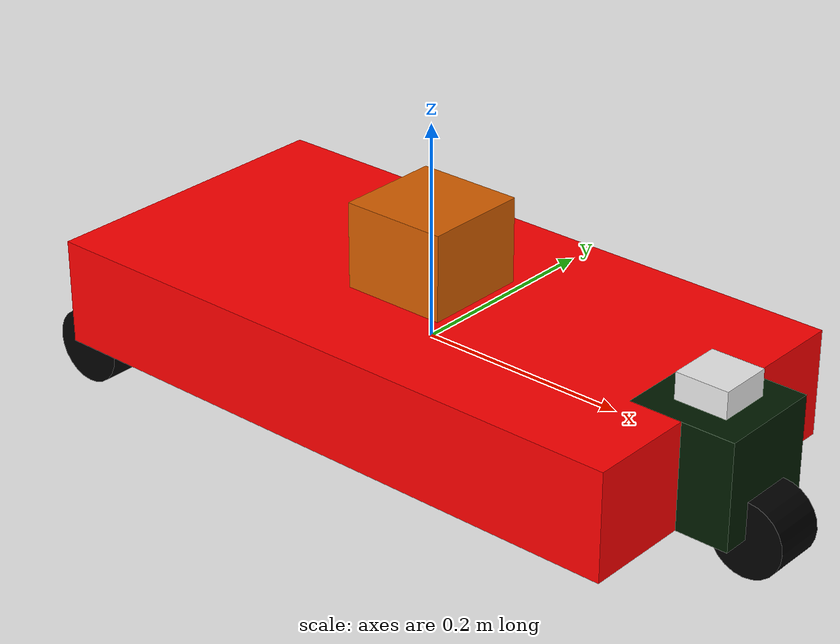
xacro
<?xml version="1.0"?>
<robot name="meccanum">
    <link name="base_link">
        <visual>
            <geometry>
                <box size="0.6 0.3 0.1"/>
            </geometry>
            <material name="red">
                <color rgba="1 0.0 0.0 1"/>
            </material>
        </visual>
        <collision>
            <geometry>
                <box size="0.6 0.3 0.1"/>
            </geometry>
        </collision>
        <inertial>
            <mass value="1.0"/>
            <inertia ixx="0.015" ixy="0" ixz="0" iyy="0.0375" iyz="0.0" izz="0.0375"/>
        </inertial>

    </link>

    <link name="front_caster_of_wheel">
        <visual>
            <geometry>
                <box size="0.1 0.1 0.1"/>
            </geometry>
            <material name="green">
                <color rgba="0.0 0.1 0.0 1"/>
            </material>
        </visual>
        <collision>
            <geometry>
                <box size="0.1 0.1 0.1"/>
            </geometry>
        </collision>
        <inertial>
            <mass value="0.1"/>
            <inertia ixx="0.00083" ixy="0" ixz="0" iyy="0.00083" iyz="0.0" izz="0.000167"/>
        </inertial>
    </link>
    <joint name="front_caster_of_wheel_joint" type="continuous">
       <axis xyz="0.0 0.0 1"/>
       <parent link="base_link"/>
       <child link="front_caster_of_wheel"/>
       <origin xyz="0.3 0.0 0.0" rpy="0.0 0.0 0.0"/>
    </joint>

    <link name="front_wheel">
        <visual>
            <geometry>
                <cylinder radius="0.035" length="0.05"/>
            </geometry>
            <material name="black">

            </material>

        </visual>
        <collision>
            <geometry>
                <cylinder radius="0.035" length="0.05"/>
            </geometry>
        </collision>
        <inertial>
            <mass value="0.1"/>
            <inertia ixx="5.1458e-5" ixy="0" ixz="0" iyy="5.1458e-5" iyz="0.0" izz="6.125e-5"/>
        </inertial>
    </link>

    <joint name="front_wheel_joint" type="continuous">
        <axis xyz="0.0 0.0 1"/>
        <parent link="front_caster_of_wheel"/>
        <child link="front_wheel"/>
        <origin xyz="0.05 0.0 -0.05" rpy="-1.5708 0.0 0.0"/>

    </joint>

<link name="right_wheel">
        <visual>
            <geometry>
                <cylinder radius="0.035" length="0.05"/>
            </geometry>
            <material name="black">
                <color rgba="0.0 0.0 0.0 1"/>
            </material>

        </visual>
        <collision>
            <geometry>
                <cylinder radius="0.035" length="0.05"/>
            </geometry>
        </collision>
        <inertial>
            <mass value="0.1"/>
            <inertia ixx="5.1458e-5" ixy="0" ixz="0" iyy="5.1458e-5" iyz="0.0" izz="6.125e-5"/>        </inertial>
    </link>

    <joint name="right_wheel_joint" type="continuous">
        <axis xyz="0.0 0.0 1"/>
        <parent link="base_link"/>
        <child link="right_wheel"/>
        <origin xyz="-0.2825 -0.125 -0.05" rpy="-1.5708 0.0 0.0"/>

    </joint>
    <link name="left_wheel">
        <visual>
            <geometry>
                <cylinder radius="0.035" length="0.05"/>
            </geometry>
            <material name="black">
                <color rgba="0.0 0.0 0.0 1"/>
            </material>

        </visual>
        <collision>
            <geometry>
                <cylinder radius="0.035" length="0.05"/>
            </geometry>
        </collision>
        <inertial>
            <mass value="0.1"/>
            <inertia ixx="5.1458e-5" ixy="0" ixz="0" iyy="5.1458e-5" iyz="0.0" izz="6.125e-5"/>        </inertial>
    </link>

    <joint name="left_wheel_joint" type="continuous">
        <axis xyz="0.0 0.0 1"/>
        <parent link="base_link"/>
        <child link="left_wheel"/>
        <origin xyz="-0.2825 0.125 -0.05" rpy="-1.5708 0.0 0.0"/>

    </joint>

    <link name="laser_scanner">
        <visual>
            <geometry>
                <box size="0.1 0.1 0.1"/>
            </geometry>
        </visual>

        <collision>
            <geometry>
                <box size="0.1 0.1 0.1"/>
            </geometry>
        </collision>

        <inertial>
            <mass value="1e-5"/>
            <inertia ixx="1e-6" ixy="0" ixz="0.0" iyy="1e-6" iyz="0.0" izz="1e-6"/>
        </inertial>
    </link>

    <joint name="laser_scanner_joint" type="fixed">
        <axis xyz="0.0 1 0.0"/>
        <parent link="base_link"/>
        <child link="laser_scanner"/>
        <origin xyz="0.0 0.0 0.08" rpy="0.0 0.0 0.0"/>
    </joint>

  <joint name="camera_joint" type="fixed">
    <axis xyz="0 1 0" />
    <origin xyz="0.3 0.0 0.05" rpy="0 0 0"/>
    <parent link="base_link"/>
    <child link="camera_link"/>
  </joint>

  <!-- Camera -->
  <link name="camera_link">
    <collision>
      <origin xyz="0 0 0" rpy="0 0 0"/>
      <geometry>
    <box size="0.05 0.05 0.05"/>
      </geometry>
    </collision>

    <visual>
      <origin xyz="0 0 0" rpy="0 0 0"/>
      <geometry>
        <box size="0.05 0.05 0.05"/>
      </geometry>
      <material name="white"/>
    </visual>

    <inertial>
      <mass value="1e-5" />
      <origin xyz="0 0 0" rpy="0 0 0"/>
      <inertia ixx="1e-6" ixy="0" ixz="0" iyy="1e-6" iyz="0" izz="1e-6" />
    </inertial>
  </link>

  <!-- camera -->
  <gazebo reference="camera_link">
    <sensor type="camera" name="camera1">
    <pose>0 0 0 0 0 0</pose>
    <visualize>true</visualize>
      <update_rate>30.0</update_rate>
      <camera name="head">
        <horizontal_fov>1.3962634</horizontal_fov>
        <image>
          <width>640</width>
          <height>480</height>
          <format>R8G8B8</format>
        </image>
        <clip>
          <near>0.02</near>
          <far>300</far>
        </clip>
        <noise>
          <type>gaussian</type>
          <!-- Noise is sampled independently per pixel on each frame.
               That pixel's noise value is added to each of its color
               channels, which at that point lie in the range [0,1]. -->
          <mean>0.0</mean>
          <stddev>0.007</stddev>
        </noise>
      </camera>
      <plugin name="camera_controller" filename="libgazebo_ros_camera.so">
        <alwaysOn>true</alwaysOn>
        <updateRate>0</updateRate>
        <cameraName>rrbot/camera1</cameraName>
        <imageTopicName>image_raw</imageTopicName>
        <cameraInfoTopicName>camera_info</cameraInfoTopicName>
        <frameName>camera_link</frameName>
        <hackBaseline>0.07</hackBaseline>
        <distortionK1>0.0</distortionK1>
        <distortionK2>0.0</distortionK2>
        <distortionK3>0.0</distortionK3>
        <distortionT1>0.0</distortionT1>
        <distortionT2>0.0</distortionT2>
      </plugin>
    </sensor>
  </gazebo>

    <gazebo reference="laser_scanner">
        <sensor type="ray" name="laser">
            <pose>0 0 0 0 0 0</pose>
            <visualize>true</visualize>
            <update_rate>40</update_rate>
            <ray>
                <scan>
                    <horizontal>
                        <samples>720</samples>
                        <resolution>1</resolution>
                        <min_angle>-1.578</min_angle>
                        <max_angle>1.578</max_angle>
                    </horizontal>
                </scan>
                <range>
                    <min>0.1</min>
                    <max>10</max>
                    <resolution>0.1</resolution>
                </range>
            </ray>
            <plugin name="Lidar" filename="libgazebo_ros_laser.so">
                <topicName>/scan</topicName>
                <frameName>laser_scanner</frameName>
            </plugin>
        </sensor>
    </gazebo>

  <gazebo>

    <plugin name="nexus_ros_force_based_move" filename="libnexus_ros_force_based_move.so">
      <commandTopic>cmd_vel</commandTopic>
      <odometryTopic>odom</odometryTopic>
      <odometryFrame>odom</odometryFrame>
      <odometryRate>25.0</odometryRate>
      <robotBaseFrame>base_footprint</robotBaseFrame>
      <cmdVelTimeOut>0.25</cmdVelTimeOut>
      <publishOdometryTf>0</publishOdometryTf>
      <yaw_velocity_p_gain>1.0</yaw_velocity_p_gain>
      <x_velocity_p_gain>15.0</x_velocity_p_gain>
      <y_velocity_p_gain>15.0</y_velocity_p_gain>
      <max_x_velocity>0.6</max_x_velocity>
      <max_y_velocity>0.6</max_y_velocity>
      <max_yaw_velocity>0.5</max_yaw_velocity>
    </plugin>
  </gazebo>

  <!-- All static links get collapsed down to base_link in Gazebo, so that's
       the one to apply the colour to (in Gazebo 5+). -->
  <gazebo reference="base_footprint">
    <material>Gazebo/Yellow</material>
    <gravity>true</gravity>
  </gazebo>

  <gazebo reference="base_link">
    <material>Gazebo/Yellow</material>
  </gazebo>

  <gazebo reference="left_sensor">
    <material>Gazebo/Black</material>
  </gazebo>

   <gazebo reference="front_sensor">
    <material>Gazebo/Black</material>
  </gazebo>

   <gazebo reference="right_sensor">
    <material>Gazebo/Black</material>
  </gazebo>

   <gazebo reference="rear_sensor">
    <material>Gazebo/Black</material>
  </gazebo>

  <gazebo reference="upper_left_wheel_shaft">
    <material>Gazebo/Black</material>
  </gazebo>

  <gazebo reference="lower_left_wheel_shaft">
    <material>Gazebo/Black</material>
  </gazebo>

  <gazebo reference="upper_right_wheel_shaft">
    <material>Gazebo/Black</material>
  </gazebo>

  <gazebo reference="lower_right_wheel_shaft">
    <material>Gazebo/Black</material>
  </gazebo>

  <!-- Wheel friction to zero, as movement is handled by applying forces at the body level. -->
  <gazebo reference="upper_left_wheel">
    <material>Gazebo/Grey</material>
    <mu1>0.0</mu1>
    <mu2>0.0</mu2>
  </gazebo>

  <gazebo reference="lower_left_wheel">
    <material>Gazebo/Grey</material>
    <mu1>0.0</mu1>
    <mu2>0.0</mu2>
  </gazebo>

  <gazebo reference="upper_right_wheel">
    <material>Gazebo/Grey</material>
    <mu1>0.0</mu1>
    <mu2>0.0</mu2>
  </gazebo>

  <gazebo reference="lower_right_wheel">
    <material>Gazebo/Grey</material>
    <mu1>0.0</mu1>
    <mu2>0.0</mu2>
  </gazebo>

       <gazebo>
        <plugin name="joint_state_publisher"
                filename="libgazebo_ros_joint_state_publisher.so">
        </plugin>
    </gazebo>
    </robot>
